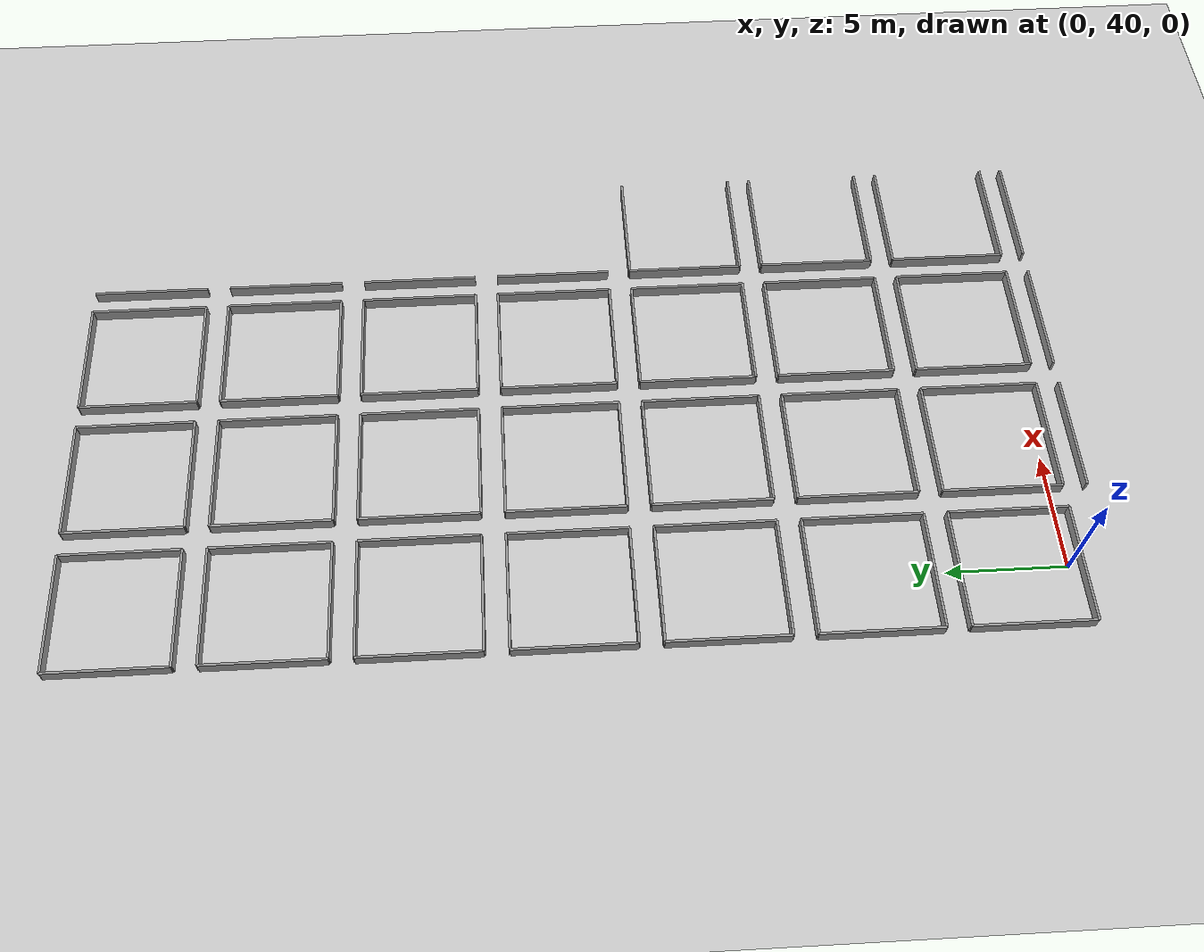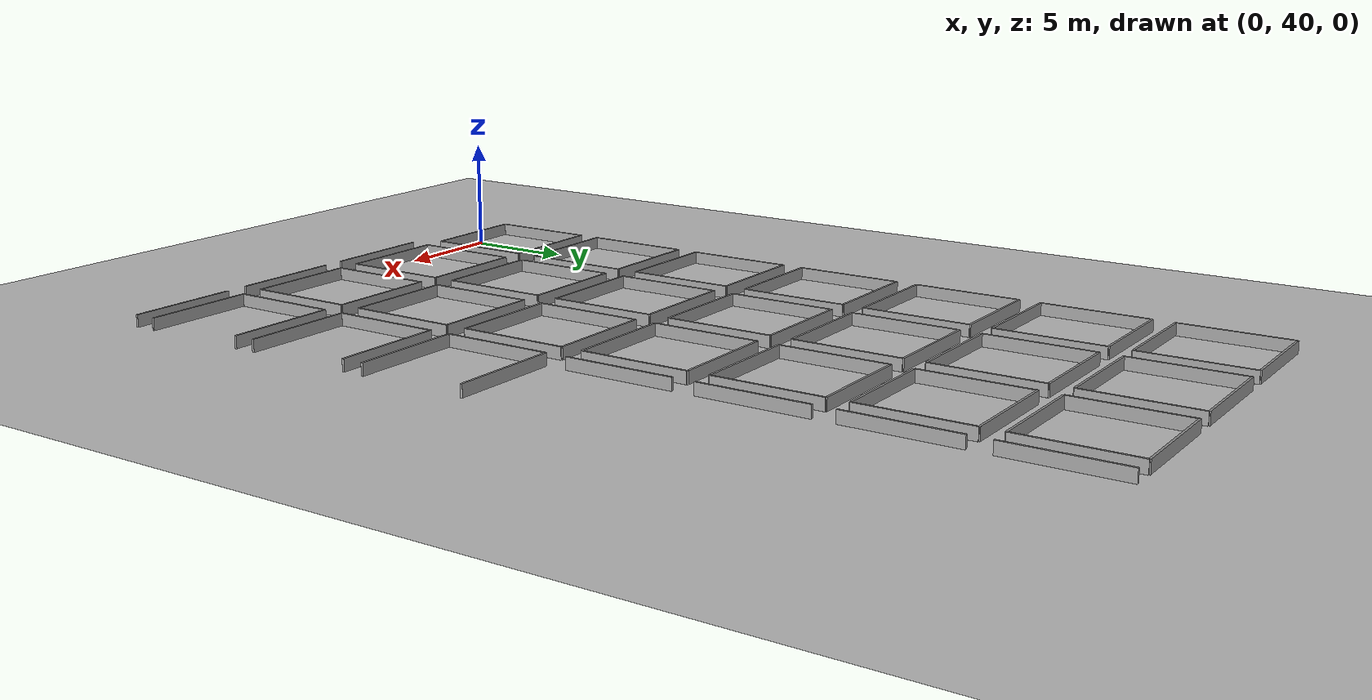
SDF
<sdf version="1.7">
 <world name="default">
  <include><uri>model://sun</uri></include>
  <model name="ground_plane">
   <static>true</static>
   <link name="link">
    <collision name="collision">
     <geometry><plane><normal>0 0 1</normal><size>100 100</size></plane></geometry>
    </collision>
    <visual name="visual">
     <geometry><plane><normal>0 0 1</normal><size>100 100</size></plane></geometry>
     <material>
      <script><uri>file://media/materials/scripts/gazebo.material</uri><name>Gazebo/Grey</name></script>
     </material>
    </visual>
   </link>
  </model>
  <model name="wall_91_north">
   <static>true</static>
   <pose>6 38.5 0 0 0 0</pose>
   <link name="link">
    <collision name="collision"><geometry><box><size>5 0.1 1</size></box></geometry></collision>
    <visual name="visual">
     <geometry><box><size>5 0.1 1</size></box></geometry>
     <material>
      <script><uri>file://media/materials/scripts/gazebo.material</uri><name>Gazebo/Grey</name></script>
     </material>
    </visual>
   </link>
  </model>
  <model name="wall_92_north">
   <static>true</static>
   <pose>12 38.5 0 0 0 0</pose>
   <link name="link">
    <collision name="collision"><geometry><box><size>5 0.1 1</size></box></geometry></collision>
    <visual name="visual">
     <geometry><box><size>5 0.1 1</size></box></geometry>
     <material>
      <script><uri>file://media/materials/scripts/gazebo.material</uri><name>Gazebo/Grey</name></script>
     </material>
    </visual>
   </link>
  </model>
  <model name="wall_93_north">
   <static>true</static>
   <pose>18 38.5 0 0 0 0</pose>
   <link name="link">
    <collision name="collision"><geometry><box><size>5 0.1 1</size></box></geometry></collision>
    <visual name="visual">
     <geometry><box><size>5 0.1 1</size></box></geometry>
     <material>
      <script><uri>file://media/materials/scripts/gazebo.material</uri><name>Gazebo/Grey</name></script>
     </material>
    </visual>
   </link>
  </model>
  <model name="wall_105_north">
   <static>true</static>
   <pose>0 44.5 0 0 0 0</pose>
   <link name="link">
    <collision name="collision"><geometry><box><size>5 0.1 1</size></box></geometry></collision>
    <visual name="visual">
     <geometry><box><size>5 0.1 1</size></box></geometry>
     <material>
      <script><uri>file://media/materials/scripts/gazebo.material</uri><name>Gazebo/Grey</name></script>
     </material>
    </visual>
   </link>
  </model>
  <model name="wall_105_south">
   <static>true</static>
   <pose>0 39.5 0 0 0 0</pose>
   <link name="link">
    <collision name="collision"><geometry><box><size>5 0.1 1</size></box></geometry></collision>
    <visual name="visual">
     <geometry><box><size>5 0.1 1</size></box></geometry>
     <material>
      <script><uri>file://media/materials/scripts/gazebo.material</uri><name>Gazebo/Grey</name></script>
     </material>
    </visual>
   </link>
  </model>
  <model name="wall_105_east">
   <static>true</static>
   <pose>2.5 42 0 0 0 1.5707</pose>
   <link name="link">
    <collision name="collision"><geometry><box><size>5 0.1 1</size></box></geometry></collision>
    <visual name="visual">
     <geometry><box><size>5 0.1 1</size></box></geometry>
     <material>
      <script><uri>file://media/materials/scripts/gazebo.material</uri><name>Gazebo/Grey</name></script>
     </material>
    </visual>
   </link>
  </model>
  <model name="wall_105_west">
   <static>true</static>
   <pose>-2.5 42 0 0 0 1.5707</pose>
   <link name="link">
    <collision name="collision"><geometry><box><size>5 0.1 1</size></box></geometry></collision>
    <visual name="visual">
     <geometry><box><size>5 0.1 1</size></box></geometry>
     <material>
      <script><uri>file://media/materials/scripts/gazebo.material</uri><name>Gazebo/Grey</name></script>
     </material>
    </visual>
   </link>
  </model>
  <model name="wall_106_north">
   <static>true</static>
   <pose>6 44.5 0 0 0 0</pose>
   <link name="link">
    <collision name="collision"><geometry><box><size>5 0.1 1</size></box></geometry></collision>
    <visual name="visual">
     <geometry><box><size>5 0.1 1</size></box></geometry>
     <material>
      <script><uri>file://media/materials/scripts/gazebo.material</uri><name>Gazebo/Grey</name></script>
     </material>
    </visual>
   </link>
  </model>
  <model name="wall_106_south">
   <static>true</static>
   <pose>6 39.5 0 0 0 0</pose>
   <link name="link">
    <collision name="collision"><geometry><box><size>5 0.1 1</size></box></geometry></collision>
    <visual name="visual">
     <geometry><box><size>5 0.1 1</size></box></geometry>
     <material>
      <script><uri>file://media/materials/scripts/gazebo.material</uri><name>Gazebo/Grey</name></script>
     </material>
    </visual>
   </link>
  </model>
  <model name="wall_106_east">
   <static>true</static>
   <pose>8.5 42 0 0 0 1.5707</pose>
   <link name="link">
    <collision name="collision"><geometry><box><size>5 0.1 1</size></box></geometry></collision>
    <visual name="visual">
     <geometry><box><size>5 0.1 1</size></box></geometry>
     <material>
      <script><uri>file://media/materials/scripts/gazebo.material</uri><name>Gazebo/Grey</name></script>
     </material>
    </visual>
   </link>
  </model>
  <model name="wall_106_west">
   <static>true</static>
   <pose>3.5 42 0 0 0 1.5707</pose>
   <link name="link">
    <collision name="collision"><geometry><box><size>5 0.1 1</size></box></geometry></collision>
    <visual name="visual">
     <geometry><box><size>5 0.1 1</size></box></geometry>
     <material>
      <script><uri>file://media/materials/scripts/gazebo.material</uri><name>Gazebo/Grey</name></script>
     </material>
    </visual>
   </link>
  </model>
  <model name="wall_107_north">
   <static>true</static>
   <pose>12 44.5 0 0 0 0</pose>
   <link name="link">
    <collision name="collision"><geometry><box><size>5 0.1 1</size></box></geometry></collision>
    <visual name="visual">
     <geometry><box><size>5 0.1 1</size></box></geometry>
     <material>
      <script><uri>file://media/materials/scripts/gazebo.material</uri><name>Gazebo/Grey</name></script>
     </material>
    </visual>
   </link>
  </model>
  <model name="wall_107_south">
   <static>true</static>
   <pose>12 39.5 0 0 0 0</pose>
   <link name="link">
    <collision name="collision"><geometry><box><size>5 0.1 1</size></box></geometry></collision>
    <visual name="visual">
     <geometry><box><size>5 0.1 1</size></box></geometry>
     <material>
      <script><uri>file://media/materials/scripts/gazebo.material</uri><name>Gazebo/Grey</name></script>
     </material>
    </visual>
   </link>
  </model>
  <model name="wall_107_east">
   <static>true</static>
   <pose>14.5 42 0 0 0 1.5707</pose>
   <link name="link">
    <collision name="collision"><geometry><box><size>5 0.1 1</size></box></geometry></collision>
    <visual name="visual">
     <geometry><box><size>5 0.1 1</size></box></geometry>
     <material>
      <script><uri>file://media/materials/scripts/gazebo.material</uri><name>Gazebo/Grey</name></script>
     </material>
    </visual>
   </link>
  </model>
  <model name="wall_107_west">
   <static>true</static>
   <pose>9.5 42 0 0 0 1.5707</pose>
   <link name="link">
    <collision name="collision"><geometry><box><size>5 0.1 1</size></box></geometry></collision>
    <visual name="visual">
     <geometry><box><size>5 0.1 1</size></box></geometry>
     <material>
      <script><uri>file://media/materials/scripts/gazebo.material</uri><name>Gazebo/Grey</name></script>
     </material>
    </visual>
   </link>
  </model>
  <model name="wall_108_north">
   <static>true</static>
   <pose>18 44.5 0 0 0 0</pose>
   <link name="link">
    <collision name="collision"><geometry><box><size>5 0.1 1</size></box></geometry></collision>
    <visual name="visual">
     <geometry><box><size>5 0.1 1</size></box></geometry>
     <material>
      <script><uri>file://media/materials/scripts/gazebo.material</uri><name>Gazebo/Grey</name></script>
     </material>
    </visual>
   </link>
  </model>
  <model name="wall_108_south">
   <static>true</static>
   <pose>18 39.5 0 0 0 0</pose>
   <link name="link">
    <collision name="collision"><geometry><box><size>5 0.1 1</size></box></geometry></collision>
    <visual name="visual">
     <geometry><box><size>5 0.1 1</size></box></geometry>
     <material>
      <script><uri>file://media/materials/scripts/gazebo.material</uri><name>Gazebo/Grey</name></script>
     </material>
    </visual>
   </link>
  </model>
  <model name="wall_108_west">
   <static>true</static>
   <pose>15.5 42 0 0 0 1.5707</pose>
   <link name="link">
    <collision name="collision"><geometry><box><size>5 0.1 1</size></box></geometry></collision>
    <visual name="visual">
     <geometry><box><size>5 0.1 1</size></box></geometry>
     <material>
      <script><uri>file://media/materials/scripts/gazebo.material</uri><name>Gazebo/Grey</name></script>
     </material>
    </visual>
   </link>
  </model>
  <model name="wall_120_north">
   <static>true</static>
   <pose>0 50.5 0 0 0 0</pose>
   <link name="link">
    <collision name="collision"><geometry><box><size>5 0.1 1</size></box></geometry></collision>
    <visual name="visual">
     <geometry><box><size>5 0.1 1</size></box></geometry>
     <material>
      <script><uri>file://media/materials/scripts/gazebo.material</uri><name>Gazebo/Grey</name></script>
     </material>
    </visual>
   </link>
  </model>
  <model name="wall_120_south">
   <static>true</static>
   <pose>0 45.5 0 0 0 0</pose>
   <link name="link">
    <collision name="collision"><geometry><box><size>5 0.1 1</size></box></geometry></collision>
    <visual name="visual">
     <geometry><box><size>5 0.1 1</size></box></geometry>
     <material>
      <script><uri>file://media/materials/scripts/gazebo.material</uri><name>Gazebo/Grey</name></script>
     </material>
    </visual>
   </link>
  </model>
  <model name="wall_120_east">
   <static>true</static>
   <pose>2.5 48 0 0 0 1.5707</pose>
   <link name="link">
    <collision name="collision"><geometry><box><size>5 0.1 1</size></box></geometry></collision>
    <visual name="visual">
     <geometry><box><size>5 0.1 1</size></box></geometry>
     <material>
      <script><uri>file://media/materials/scripts/gazebo.material</uri><name>Gazebo/Grey</name></script>
     </material>
    </visual>
   </link>
  </model>
  <model name="wall_120_west">
   <static>true</static>
   <pose>-2.5 48 0 0 0 1.5707</pose>
   <link name="link">
    <collision name="collision"><geometry><box><size>5 0.1 1</size></box></geometry></collision>
    <visual name="visual">
     <geometry><box><size>5 0.1 1</size></box></geometry>
     <material>
      <script><uri>file://media/materials/scripts/gazebo.material</uri><name>Gazebo/Grey</name></script>
     </material>
    </visual>
   </link>
  </model>
  <model name="wall_121_north">
   <static>true</static>
   <pose>6 50.5 0 0 0 0</pose>
   <link name="link">
    <collision name="collision"><geometry><box><size>5 0.1 1</size></box></geometry></collision>
    <visual name="visual">
     <geometry><box><size>5 0.1 1</size></box></geometry>
     <material>
      <script><uri>file://media/materials/scripts/gazebo.material</uri><name>Gazebo/Grey</name></script>
     </material>
    </visual>
   </link>
  </model>
  <model name="wall_121_south">
   <static>true</static>
   <pose>6 45.5 0 0 0 0</pose>
   <link name="link">
    <collision name="collision"><geometry><box><size>5 0.1 1</size></box></geometry></collision>
    <visual name="visual">
     <geometry><box><size>5 0.1 1</size></box></geometry>
     <material>
      <script><uri>file://media/materials/scripts/gazebo.material</uri><name>Gazebo/Grey</name></script>
     </material>
    </visual>
   </link>
  </model>
  <model name="wall_121_east">
   <static>true</static>
   <pose>8.5 48 0 0 0 1.5707</pose>
   <link name="link">
    <collision name="collision"><geometry><box><size>5 0.1 1</size></box></geometry></collision>
    <visual name="visual">
     <geometry><box><size>5 0.1 1</size></box></geometry>
     <material>
      <script><uri>file://media/materials/scripts/gazebo.material</uri><name>Gazebo/Grey</name></script>
     </material>
    </visual>
   </link>
  </model>
  <model name="wall_121_west">
   <static>true</static>
   <pose>3.5 48 0 0 0 1.5707</pose>
   <link name="link">
    <collision name="collision"><geometry><box><size>5 0.1 1</size></box></geometry></collision>
    <visual name="visual">
     <geometry><box><size>5 0.1 1</size></box></geometry>
     <material>
      <script><uri>file://media/materials/scripts/gazebo.material</uri><name>Gazebo/Grey</name></script>
     </material>
    </visual>
   </link>
  </model>
  <model name="wall_122_north">
   <static>true</static>
   <pose>12 50.5 0 0 0 0</pose>
   <link name="link">
    <collision name="collision"><geometry><box><size>5 0.1 1</size></box></geometry></collision>
    <visual name="visual">
     <geometry><box><size>5 0.1 1</size></box></geometry>
     <material>
      <script><uri>file://media/materials/scripts/gazebo.material</uri><name>Gazebo/Grey</name></script>
     </material>
    </visual>
   </link>
  </model>
  <model name="wall_122_south">
   <static>true</static>
   <pose>12 45.5 0 0 0 0</pose>
   <link name="link">
    <collision name="collision"><geometry><box><size>5 0.1 1</size></box></geometry></collision>
    <visual name="visual">
     <geometry><box><size>5 0.1 1</size></box></geometry>
     <material>
      <script><uri>file://media/materials/scripts/gazebo.material</uri><name>Gazebo/Grey</name></script>
     </material>
    </visual>
   </link>
  </model>
  <model name="wall_122_east">
   <static>true</static>
   <pose>14.5 48 0 0 0 1.5707</pose>
   <link name="link">
    <collision name="collision"><geometry><box><size>5 0.1 1</size></box></geometry></collision>
    <visual name="visual">
     <geometry><box><size>5 0.1 1</size></box></geometry>
     <material>
      <script><uri>file://media/materials/scripts/gazebo.material</uri><name>Gazebo/Grey</name></script>
     </material>
    </visual>
   </link>
  </model>
  <model name="wall_122_west">
   <static>true</static>
   <pose>9.5 48 0 0 0 1.5707</pose>
   <link name="link">
    <collision name="collision"><geometry><box><size>5 0.1 1</size></box></geometry></collision>
    <visual name="visual">
     <geometry><box><size>5 0.1 1</size></box></geometry>
     <material>
      <script><uri>file://media/materials/scripts/gazebo.material</uri><name>Gazebo/Grey</name></script>
     </material>
    </visual>
   </link>
  </model>
  <model name="wall_123_north">
   <static>true</static>
   <pose>18 50.5 0 0 0 0</pose>
   <link name="link">
    <collision name="collision"><geometry><box><size>5 0.1 1</size></box></geometry></collision>
    <visual name="visual">
     <geometry><box><size>5 0.1 1</size></box></geometry>
     <material>
      <script><uri>file://media/materials/scripts/gazebo.material</uri><name>Gazebo/Grey</name></script>
     </material>
    </visual>
   </link>
  </model>
  <model name="wall_123_south">
   <static>true</static>
   <pose>18 45.5 0 0 0 0</pose>
   <link name="link">
    <collision name="collision"><geometry><box><size>5 0.1 1</size></box></geometry></collision>
    <visual name="visual">
     <geometry><box><size>5 0.1 1</size></box></geometry>
     <material>
      <script><uri>file://media/materials/scripts/gazebo.material</uri><name>Gazebo/Grey</name></script>
     </material>
    </visual>
   </link>
  </model>
  <model name="wall_123_west">
   <static>true</static>
   <pose>15.5 48 0 0 0 1.5707</pose>
   <link name="link">
    <collision name="collision"><geometry><box><size>5 0.1 1</size></box></geometry></collision>
    <visual name="visual">
     <geometry><box><size>5 0.1 1</size></box></geometry>
     <material>
      <script><uri>file://media/materials/scripts/gazebo.material</uri><name>Gazebo/Grey</name></script>
     </material>
    </visual>
   </link>
  </model>
  <model name="wall_135_north">
   <static>true</static>
   <pose>0 56.5 0 0 0 0</pose>
   <link name="link">
    <collision name="collision"><geometry><box><size>5 0.1 1</size></box></geometry></collision>
    <visual name="visual">
     <geometry><box><size>5 0.1 1</size></box></geometry>
     <material>
      <script><uri>file://media/materials/scripts/gazebo.material</uri><name>Gazebo/Grey</name></script>
     </material>
    </visual>
   </link>
  </model>
  <model name="wall_135_south">
   <static>true</static>
   <pose>0 51.5 0 0 0 0</pose>
   <link name="link">
    <collision name="collision"><geometry><box><size>5 0.1 1</size></box></geometry></collision>
    <visual name="visual">
     <geometry><box><size>5 0.1 1</size></box></geometry>
     <material>
      <script><uri>file://media/materials/scripts/gazebo.material</uri><name>Gazebo/Grey</name></script>
     </material>
    </visual>
   </link>
  </model>
  <model name="wall_135_east">
   <static>true</static>
   <pose>2.5 54 0 0 0 1.5707</pose>
   <link name="link">
    <collision name="collision"><geometry><box><size>5 0.1 1</size></box></geometry></collision>
    <visual name="visual">
     <geometry><box><size>5 0.1 1</size></box></geometry>
     <material>
      <script><uri>file://media/materials/scripts/gazebo.material</uri><name>Gazebo/Grey</name></script>
     </material>
    </visual>
   </link>
  </model>
  <model name="wall_135_west">
   <static>true</static>
   <pose>-2.5 54 0 0 0 1.5707</pose>
   <link name="link">
    <collision name="collision"><geometry><box><size>5 0.1 1</size></box></geometry></collision>
    <visual name="visual">
     <geometry><box><size>5 0.1 1</size></box></geometry>
     <material>
      <script><uri>file://media/materials/scripts/gazebo.material</uri><name>Gazebo/Grey</name></script>
     </material>
    </visual>
   </link>
  </model>
  <model name="wall_136_north">
   <static>true</static>
   <pose>6 56.5 0 0 0 0</pose>
   <link name="link">
    <collision name="collision"><geometry><box><size>5 0.1 1</size></box></geometry></collision>
    <visual name="visual">
     <geometry><box><size>5 0.1 1</size></box></geometry>
     <material>
      <script><uri>file://media/materials/scripts/gazebo.material</uri><name>Gazebo/Grey</name></script>
     </material>
    </visual>
   </link>
  </model>
  <model name="wall_136_south">
   <static>true</static>
   <pose>6 51.5 0 0 0 0</pose>
   <link name="link">
    <collision name="collision"><geometry><box><size>5 0.1 1</size></box></geometry></collision>
    <visual name="visual">
     <geometry><box><size>5 0.1 1</size></box></geometry>
     <material>
      <script><uri>file://media/materials/scripts/gazebo.material</uri><name>Gazebo/Grey</name></script>
     </material>
    </visual>
   </link>
  </model>
  <model name="wall_136_east">
   <static>true</static>
   <pose>8.5 54 0 0 0 1.5707</pose>
   <link name="link">
    <collision name="collision"><geometry><box><size>5 0.1 1</size></box></geometry></collision>
    <visual name="visual">
     <geometry><box><size>5 0.1 1</size></box></geometry>
     <material>
      <script><uri>file://media/materials/scripts/gazebo.material</uri><name>Gazebo/Grey</name></script>
     </material>
    </visual>
   </link>
  </model>
  <model name="wall_136_west">
   <static>true</static>
   <pose>3.5 54 0 0 0 1.5707</pose>
   <link name="link">
    <collision name="collision"><geometry><box><size>5 0.1 1</size></box></geometry></collision>
    <visual name="visual">
     <geometry><box><size>5 0.1 1</size></box></geometry>
     <material>
      <script><uri>file://media/materials/scripts/gazebo.material</uri><name>Gazebo/Grey</name></script>
     </material>
    </visual>
   </link>
  </model>
  <model name="wall_137_north">
   <static>true</static>
   <pose>12 56.5 0 0 0 0</pose>
   <link name="link">
    <collision name="collision"><geometry><box><size>5 0.1 1</size></box></geometry></collision>
    <visual name="visual">
     <geometry><box><size>5 0.1 1</size></box></geometry>
     <material>
      <script><uri>file://media/materials/scripts/gazebo.material</uri><name>Gazebo/Grey</name></script>
     </material>
    </visual>
   </link>
  </model>
  <model name="wall_137_south">
   <static>true</static>
   <pose>12 51.5 0 0 0 0</pose>
   <link name="link">
    <collision name="collision"><geometry><box><size>5 0.1 1</size></box></geometry></collision>
    <visual name="visual">
     <geometry><box><size>5 0.1 1</size></box></geometry>
     <material>
      <script><uri>file://media/materials/scripts/gazebo.material</uri><name>Gazebo/Grey</name></script>
     </material>
    </visual>
   </link>
  </model>
  <model name="wall_137_east">
   <static>true</static>
   <pose>14.5 54 0 0 0 1.5707</pose>
   <link name="link">
    <collision name="collision"><geometry><box><size>5 0.1 1</size></box></geometry></collision>
    <visual name="visual">
     <geometry><box><size>5 0.1 1</size></box></geometry>
     <material>
      <script><uri>file://media/materials/scripts/gazebo.material</uri><name>Gazebo/Grey</name></script>
     </material>
    </visual>
   </link>
  </model>
  <model name="wall_137_west">
   <static>true</static>
   <pose>9.5 54 0 0 0 1.5707</pose>
   <link name="link">
    <collision name="collision"><geometry><box><size>5 0.1 1</size></box></geometry></collision>
    <visual name="visual">
     <geometry><box><size>5 0.1 1</size></box></geometry>
     <material>
      <script><uri>file://media/materials/scripts/gazebo.material</uri><name>Gazebo/Grey</name></script>
     </material>
    </visual>
   </link>
  </model>
  <model name="wall_138_north">
   <static>true</static>
   <pose>18 56.5 0 0 0 0</pose>
   <link name="link">
    <collision name="collision"><geometry><box><size>5 0.1 1</size></box></geometry></collision>
    <visual name="visual">
     <geometry><box><size>5 0.1 1</size></box></geometry>
     <material>
      <script><uri>file://media/materials/scripts/gazebo.material</uri><name>Gazebo/Grey</name></script>
     </material>
    </visual>
   </link>
  </model>
  <model name="wall_138_south">
   <static>true</static>
   <pose>18 51.5 0 0 0 0</pose>
   <link name="link">
    <collision name="collision"><geometry><box><size>5 0.1 1</size></box></geometry></collision>
    <visual name="visual">
     <geometry><box><size>5 0.1 1</size></box></geometry>
     <material>
      <script><uri>file://media/materials/scripts/gazebo.material</uri><name>Gazebo/Grey</name></script>
     </material>
    </visual>
   </link>
  </model>
  <model name="wall_138_west">
   <static>true</static>
   <pose>15.5 54 0 0 0 1.5707</pose>
   <link name="link">
    <collision name="collision"><geometry><box><size>5 0.1 1</size></box></geometry></collision>
    <visual name="visual">
     <geometry><box><size>5 0.1 1</size></box></geometry>
     <material>
      <script><uri>file://media/materials/scripts/gazebo.material</uri><name>Gazebo/Grey</name></script>
     </material>
    </visual>
   </link>
  </model>
  <model name="wall_150_north">
   <static>true</static>
   <pose>0 62.5 0 0 0 0</pose>
   <link name="link">
    <collision name="collision"><geometry><box><size>5 0.1 1</size></box></geometry></collision>
    <visual name="visual">
     <geometry><box><size>5 0.1 1</size></box></geometry>
     <material>
      <script><uri>file://media/materials/scripts/gazebo.material</uri><name>Gazebo/Grey</name></script>
     </material>
    </visual>
   </link>
  </model>
  <model name="wall_150_south">
   <static>true</static>
   <pose>0 57.5 0 0 0 0</pose>
   <link name="link">
    <collision name="collision"><geometry><box><size>5 0.1 1</size></box></geometry></collision>
    <visual name="visual">
     <geometry><box><size>5 0.1 1</size></box></geometry>
     <material>
      <script><uri>file://media/materials/scripts/gazebo.material</uri><name>Gazebo/Grey</name></script>
     </material>
    </visual>
   </link>
  </model>
  <model name="wall_150_east">
   <static>true</static>
   <pose>2.5 60 0 0 0 1.5707</pose>
   <link name="link">
    <collision name="collision"><geometry><box><size>5 0.1 1</size></box></geometry></collision>
    <visual name="visual">
     <geometry><box><size>5 0.1 1</size></box></geometry>
     <material>
      <script><uri>file://media/materials/scripts/gazebo.material</uri><name>Gazebo/Grey</name></script>
     </material>
    </visual>
   </link>
  </model>
  <model name="wall_150_west">
   <static>true</static>
   <pose>-2.5 60 0 0 0 1.5707</pose>
   <link name="link">
    <collision name="collision"><geometry><box><size>5 0.1 1</size></box></geometry></collision>
    <visual name="visual">
     <geometry><box><size>5 0.1 1</size></box></geometry>
     <material>
      <script><uri>file://media/materials/scripts/gazebo.material</uri><name>Gazebo/Grey</name></script>
     </material>
    </visual>
   </link>
  </model>
  <model name="wall_151_north">
   <static>true</static>
   <pose>6 62.5 0 0 0 0</pose>
   <link name="link">
    <collision name="collision"><geometry><box><size>5 0.1 1</size></box></geometry></collision>
    <visual name="visual">
     <geometry><box><size>5 0.1 1</size></box></geometry>
     <material>
      <script><uri>file://media/materials/scripts/gazebo.material</uri><name>Gazebo/Grey</name></script>
     </material>
    </visual>
   </link>
  </model>
  <model name="wall_151_south">
   <static>true</static>
   <pose>6 57.5 0 0 0 0</pose>
   <link name="link">
    <collision name="collision"><geometry><box><size>5 0.1 1</size></box></geometry></collision>
    <visual name="visual">
     <geometry><box><size>5 0.1 1</size></box></geometry>
     <material>
      <script><uri>file://media/materials/scripts/gazebo.material</uri><name>Gazebo/Grey</name></script>
     </material>
    </visual>
   </link>
  </model>
  <model name="wall_151_east">
   <static>true</static>
   <pose>8.5 60 0 0 0 1.5707</pose>
   <link name="link">
    <collision name="collision"><geometry><box><size>5 0.1 1</size></box></geometry></collision>
    <visual name="visual">
     <geometry><box><size>5 0.1 1</size></box></geometry>
     <material>
      <script><uri>file://media/materials/scripts/gazebo.material</uri><name>Gazebo/Grey</name></script>
     </material>
    </visual>
   </link>
  </model>
  <model name="wall_151_west">
   <static>true</static>
   <pose>3.5 60 0 0 0 1.5707</pose>
   <link name="link">
    <collision name="collision"><geometry><box><size>5 0.1 1</size></box></geometry></collision>
    <visual name="visual">
     <geometry><box><size>5 0.1 1</size></box></geometry>
     <material>
      <script><uri>file://media/materials/scripts/gazebo.material</uri><name>Gazebo/Grey</name></script>
     </material>
    </visual>
   </link>
  </model>
  <model name="wall_152_north">
   <static>true</static>
   <pose>12 62.5 0 0 0 0</pose>
   <link name="link">
    <collision name="collision"><geometry><box><size>5 0.1 1</size></box></geometry></collision>
    <visual name="visual">
     <geometry><box><size>5 0.1 1</size></box></geometry>
     <material>
      <script><uri>file://media/materials/scripts/gazebo.material</uri><name>Gazebo/Grey</name></script>
     </material>
    </visual>
   </link>
  </model>
  <model name="wall_152_south">
   <static>true</static>
   <pose>12 57.5 0 0 0 0</pose>
   <link name="link">
    <collision name="collision"><geometry><box><size>5 0.1 1</size></box></geometry></collision>
    <visual name="visual">
     <geometry><box><size>5 0.1 1</size></box></geometry>
     <material>
      <script><uri>file://media/materials/scripts/gazebo.material</uri><name>Gazebo/Grey</name></script>
     </material>
    </visual>
   </link>
  </model>
  <model name="wall_152_east">
   <static>true</static>
   <pose>14.5 60 0 0 0 1.5707</pose>
   <link name="link">
    <collision name="collision"><geometry><box><size>5 0.1 1</size></box></geometry></collision>
    <visual name="visual">
     <geometry><box><size>5 0.1 1</size></box></geometry>
     <material>
      <script><uri>file://media/materials/scripts/gazebo.material</uri><name>Gazebo/Grey</name></script>
     </material>
    </visual>
   </link>
  </model>
  <model name="wall_152_west">
   <static>true</static>
   <pose>9.5 60 0 0 0 1.5707</pose>
   <link name="link">
    <collision name="collision"><geometry><box><size>5 0.1 1</size></box></geometry></collision>
    <visual name="visual">
     <geometry><box><size>5 0.1 1</size></box></geometry>
     <material>
      <script><uri>file://media/materials/scripts/gazebo.material</uri><name>Gazebo/Grey</name></script>
     </material>
    </visual>
   </link>
  </model>
  <model name="wall_153_west">
   <static>true</static>
   <pose>15.5 60 0 0 0 1.5707</pose>
   <link name="link">
    <collision name="collision"><geometry><box><size>5 0.1 1</size></box></geometry></collision>
    <visual name="visual">
     <geometry><box><size>5 0.1 1</size></box></geometry>
     <material>
      <script><uri>file://media/materials/scripts/gazebo.material</uri><name>Gazebo/Grey</name></script>
     </material>
    </visual>
   </link>
  </model>
  <model name="wall_165_north">
   <static>true</static>
   <pose>0 68.5 0 0 0 0</pose>
   <link name="link">
    <collision name="collision"><geometry><box><size>5 0.1 1</size></box></geometry></collision>
    <visual name="visual">
     <geometry><box><size>5 0.1 1</size></box></geometry>
     <material>
      <script><uri>file://media/materials/scripts/gazebo.material</uri><name>Gazebo/Grey</name></script>
     </material>
    </visual>
   </link>
  </model>
  <model name="wall_165_south">
   <static>true</static>
   <pose>0 63.5 0 0 0 0</pose>
   <link name="link">
    <collision name="collision"><geometry><box><size>5 0.1 1</size></box></geometry></collision>
    <visual name="visual">
     <geometry><box><size>5 0.1 1</size></box></geometry>
     <material>
      <script><uri>file://media/materials/scripts/gazebo.material</uri><name>Gazebo/Grey</name></script>
     </material>
    </visual>
   </link>
  </model>
  <model name="wall_165_east">
   <static>true</static>
   <pose>2.5 66 0 0 0 1.5707</pose>
   <link name="link">
    <collision name="collision"><geometry><box><size>5 0.1 1</size></box></geometry></collision>
    <visual name="visual">
     <geometry><box><size>5 0.1 1</size></box></geometry>
     <material>
      <script><uri>file://media/materials/scripts/gazebo.material</uri><name>Gazebo/Grey</name></script>
     </material>
    </visual>
   </link>
  </model>
  <model name="wall_165_west">
   <static>true</static>
   <pose>-2.5 66 0 0 0 1.5707</pose>
   <link name="link">
    <collision name="collision"><geometry><box><size>5 0.1 1</size></box></geometry></collision>
    <visual name="visual">
     <geometry><box><size>5 0.1 1</size></box></geometry>
     <material>
      <script><uri>file://media/materials/scripts/gazebo.material</uri><name>Gazebo/Grey</name></script>
     </material>
    </visual>
   </link>
  </model>
  <model name="wall_166_north">
   <static>true</static>
   <pose>6 68.5 0 0 0 0</pose>
   <link name="link">
    <collision name="collision"><geometry><box><size>5 0.1 1</size></box></geometry></collision>
    <visual name="visual">
     <geometry><box><size>5 0.1 1</size></box></geometry>
     <material>
      <script><uri>file://media/materials/scripts/gazebo.material</uri><name>Gazebo/Grey</name></script>
     </material>
    </visual>
   </link>
  </model>
  <model name="wall_166_south">
   <static>true</static>
   <pose>6 63.5 0 0 0 0</pose>
   <link name="link">
    <collision name="collision"><geometry><box><size>5 0.1 1</size></box></geometry></collision>
    <visual name="visual">
     <geometry><box><size>5 0.1 1</size></box></geometry>
     <material>
      <script><uri>file://media/materials/scripts/gazebo.material</uri><name>Gazebo/Grey</name></script>
     </material>
    </visual>
   </link>
  </model>
  <model name="wall_166_east">
   <static>true</static>
   <pose>8.5 66 0 0 0 1.5707</pose>
   <link name="link">
    <collision name="collision"><geometry><box><size>5 0.1 1</size></box></geometry></collision>
    <visual name="visual">
     <geometry><box><size>5 0.1 1</size></box></geometry>
     <material>
      <script><uri>file://media/materials/scripts/gazebo.material</uri><name>Gazebo/Grey</name></script>
     </material>
    </visual>
   </link>
  </model>
  <model name="wall_166_west">
   <static>true</static>
   <pose>3.5 66 0 0 0 1.5707</pose>
   <link name="link">
    <collision name="collision"><geometry><box><size>5 0.1 1</size></box></geometry></collision>
    <visual name="visual">
     <geometry><box><size>5 0.1 1</size></box></geometry>
     <material>
      <script><uri>file://media/materials/scripts/gazebo.material</uri><name>Gazebo/Grey</name></script>
     </material>
    </visual>
   </link>
  </model>
  <model name="wall_167_north">
   <static>true</static>
   <pose>12 68.5 0 0 0 0</pose>
   <link name="link">
    <collision name="collision"><geometry><box><size>5 0.1 1</size></box></geometry></collision>
    <visual name="visual">
     <geometry><box><size>5 0.1 1</size></box></geometry>
     <material>
      <script><uri>file://media/materials/scripts/gazebo.material</uri><name>Gazebo/Grey</name></script>
     </material>
    </visual>
   </link>
  </model>
  <model name="wall_167_south">
   <static>true</static>
   <pose>12 63.5 0 0 0 0</pose>
   <link name="link">
    <collision name="collision"><geometry><box><size>5 0.1 1</size></box></geometry></collision>
    <visual name="visual">
     <geometry><box><size>5 0.1 1</size></box></geometry>
     <material>
      <script><uri>file://media/materials/scripts/gazebo.material</uri><name>Gazebo/Grey</name></script>
     </material>
    </visual>
   </link>
  </model>
  <model name="wall_167_east">
   <static>true</static>
   <pose>14.5 66 0 0 0 1.5707</pose>
   <link name="link">
    <collision name="collision"><geometry><box><size>5 0.1 1</size></box></geometry></collision>
    <visual name="visual">
     <geometry><box><size>5 0.1 1</size></box></geometry>
     <material>
      <script><uri>file://media/materials/scripts/gazebo.material</uri><name>Gazebo/Grey</name></script>
     </material>
    </visual>
   </link>
  </model>
  <model name="wall_167_west">
   <static>true</static>
   <pose>9.5 66 0 0 0 1.5707</pose>
   <link name="link">
    <collision name="collision"><geometry><box><size>5 0.1 1</size></box></geometry></collision>
    <visual name="visual">
     <geometry><box><size>5 0.1 1</size></box></geometry>
     <material>
      <script><uri>file://media/materials/scripts/gazebo.material</uri><name>Gazebo/Grey</name></script>
     </material>
    </visual>
   </link>
  </model>
  <model name="wall_168_west">
   <static>true</static>
   <pose>15.5 66 0 0 0 1.5707</pose>
   <link name="link">
    <collision name="collision"><geometry><box><size>5 0.1 1</size></box></geometry></collision>
    <visual name="visual">
     <geometry><box><size>5 0.1 1</size></box></geometry>
     <material>
      <script><uri>file://media/materials/scripts/gazebo.material</uri><name>Gazebo/Grey</name></script>
     </material>
    </visual>
   </link>
  </model>
  <model name="wall_180_north">
   <static>true</static>
   <pose>0 74.5 0 0 0 0</pose>
   <link name="link">
    <collision name="collision"><geometry><box><size>5 0.1 1</size></box></geometry></collision>
    <visual name="visual">
     <geometry><box><size>5 0.1 1</size></box></geometry>
     <material>
      <script><uri>file://media/materials/scripts/gazebo.material</uri><name>Gazebo/Grey</name></script>
     </material>
    </visual>
   </link>
  </model>
  <model name="wall_180_south">
   <static>true</static>
   <pose>0 69.5 0 0 0 0</pose>
   <link name="link">
    <collision name="collision"><geometry><box><size>5 0.1 1</size></box></geometry></collision>
    <visual name="visual">
     <geometry><box><size>5 0.1 1</size></box></geometry>
     <material>
      <script><uri>file://media/materials/scripts/gazebo.material</uri><name>Gazebo/Grey</name></script>
     </material>
    </visual>
   </link>
  </model>
  <model name="wall_180_east">
   <static>true</static>
   <pose>2.5 72 0 0 0 1.5707</pose>
   <link name="link">
    <collision name="collision"><geometry><box><size>5 0.1 1</size></box></geometry></collision>
    <visual name="visual">
     <geometry><box><size>5 0.1 1</size></box></geometry>
     <material>
      <script><uri>file://media/materials/scripts/gazebo.material</uri><name>Gazebo/Grey</name></script>
     </material>
    </visual>
   </link>
  </model>
  <model name="wall_180_west">
   <static>true</static>
   <pose>-2.5 72 0 0 0 1.5707</pose>
   <link name="link">
    <collision name="collision"><geometry><box><size>5 0.1 1</size></box></geometry></collision>
    <visual name="visual">
     <geometry><box><size>5 0.1 1</size></box></geometry>
     <material>
      <script><uri>file://media/materials/scripts/gazebo.material</uri><name>Gazebo/Grey</name></script>
     </material>
    </visual>
   </link>
  </model>
  <model name="wall_181_north">
   <static>true</static>
   <pose>6 74.5 0 0 0 0</pose>
   <link name="link">
    <collision name="collision"><geometry><box><size>5 0.1 1</size></box></geometry></collision>
    <visual name="visual">
     <geometry><box><size>5 0.1 1</size></box></geometry>
     <material>
      <script><uri>file://media/materials/scripts/gazebo.material</uri><name>Gazebo/Grey</name></script>
     </material>
    </visual>
   </link>
  </model>
  <model name="wall_181_south">
   <static>true</static>
   <pose>6 69.5 0 0 0 0</pose>
   <link name="link">
    <collision name="collision"><geometry><box><size>5 0.1 1</size></box></geometry></collision>
    <visual name="visual">
     <geometry><box><size>5 0.1 1</size></box></geometry>
     <material>
      <script><uri>file://media/materials/scripts/gazebo.material</uri><name>Gazebo/Grey</name></script>
     </material>
    </visual>
   </link>
  </model>
  <model name="wall_181_east">
   <static>true</static>
   <pose>8.5 72 0 0 0 1.5707</pose>
   <link name="link">
    <collision name="collision"><geometry><box><size>5 0.1 1</size></box></geometry></collision>
    <visual name="visual">
     <geometry><box><size>5 0.1 1</size></box></geometry>
     <material>
      <script><uri>file://media/materials/scripts/gazebo.material</uri><name>Gazebo/Grey</name></script>
     </material>
    </visual>
   </link>
  </model>
  <model name="wall_181_west">
   <static>true</static>
   <pose>3.5 72 0 0 0 1.5707</pose>
   <link name="link">
    <collision name="collision"><geometry><box><size>5 0.1 1</size></box></geometry></collision>
    <visual name="visual">
     <geometry><box><size>5 0.1 1</size></box></geometry>
     <material>
      <script><uri>file://media/materials/scripts/gazebo.material</uri><name>Gazebo/Grey</name></script>
     </material>
    </visual>
   </link>
  </model>
  <model name="wall_182_north">
   <static>true</static>
   <pose>12 74.5 0 0 0 0</pose>
   <link name="link">
    <collision name="collision"><geometry><box><size>5 0.1 1</size></box></geometry></collision>
    <visual name="visual">
     <geometry><box><size>5 0.1 1</size></box></geometry>
     <material>
      <script><uri>file://media/materials/scripts/gazebo.material</uri><name>Gazebo/Grey</name></script>
     </material>
    </visual>
   </link>
  </model>
  <model name="wall_182_south">
   <static>true</static>
   <pose>12 69.5 0 0 0 0</pose>
   <link name="link">
    <collision name="collision"><geometry><box><size>5 0.1 1</size></box></geometry></collision>
    <visual name="visual">
     <geometry><box><size>5 0.1 1</size></box></geometry>
     <material>
      <script><uri>file://media/materials/scripts/gazebo.material</uri><name>Gazebo/Grey</name></script>
     </material>
    </visual>
   </link>
  </model>
  <model name="wall_182_east">
   <static>true</static>
   <pose>14.5 72 0 0 0 1.5707</pose>
   <link name="link">
    <collision name="collision"><geometry><box><size>5 0.1 1</size></box></geometry></collision>
    <visual name="visual">
     <geometry><box><size>5 0.1 1</size></box></geometry>
     <material>
      <script><uri>file://media/materials/scripts/gazebo.material</uri><name>Gazebo/Grey</name></script>
     </material>
    </visual>
   </link>
  </model>
  <model name="wall_182_west">
   <static>true</static>
   <pose>9.5 72 0 0 0 1.5707</pose>
   <link name="link">
    <collision name="collision"><geometry><box><size>5 0.1 1</size></box></geometry></collision>
    <visual name="visual">
     <geometry><box><size>5 0.1 1</size></box></geometry>
     <material>
      <script><uri>file://media/materials/scripts/gazebo.material</uri><name>Gazebo/Grey</name></script>
     </material>
    </visual>
   </link>
  </model>
  <model name="wall_183_west">
   <static>true</static>
   <pose>15.5 72 0 0 0 1.5707</pose>
   <link name="link">
    <collision name="collision"><geometry><box><size>5 0.1 1</size></box></geometry></collision>
    <visual name="visual">
     <geometry><box><size>5 0.1 1</size></box></geometry>
     <material>
      <script><uri>file://media/materials/scripts/gazebo.material</uri><name>Gazebo/Grey</name></script>
     </material>
    </visual>
   </link>
  </model>
  <model name="wall_195_north">
   <static>true</static>
   <pose>0 80.5 0 0 0 0</pose>
   <link name="link">
    <collision name="collision"><geometry><box><size>5 0.1 1</size></box></geometry></collision>
    <visual name="visual">
     <geometry><box><size>5 0.1 1</size></box></geometry>
     <material>
      <script><uri>file://media/materials/scripts/gazebo.material</uri><name>Gazebo/Grey</name></script>
     </material>
    </visual>
   </link>
  </model>
  <model name="wall_195_south">
   <static>true</static>
   <pose>0 75.5 0 0 0 0</pose>
   <link name="link">
    <collision name="collision"><geometry><box><size>5 0.1 1</size></box></geometry></collision>
    <visual name="visual">
     <geometry><box><size>5 0.1 1</size></box></geometry>
     <material>
      <script><uri>file://media/materials/scripts/gazebo.material</uri><name>Gazebo/Grey</name></script>
     </material>
    </visual>
   </link>
  </model>
  <model name="wall_195_east">
   <static>true</static>
   <pose>2.5 78 0 0 0 1.5707</pose>
   <link name="link">
    <collision name="collision"><geometry><box><size>5 0.1 1</size></box></geometry></collision>
    <visual name="visual">
     <geometry><box><size>5 0.1 1</size></box></geometry>
     <material>
      <script><uri>file://media/materials/scripts/gazebo.material</uri><name>Gazebo/Grey</name></script>
     </material>
    </visual>
   </link>
  </model>
  <model name="wall_195_west">
   <static>true</static>
   <pose>-2.5 78 0 0 0 1.5707</pose>
   <link name="link">
    <collision name="collision"><geometry><box><size>5 0.1 1</size></box></geometry></collision>
    <visual name="visual">
     <geometry><box><size>5 0.1 1</size></box></geometry>
     <material>
      <script><uri>file://media/materials/scripts/gazebo.material</uri><name>Gazebo/Grey</name></script>
     </material>
    </visual>
   </link>
  </model>
  <model name="wall_196_north">
   <static>true</static>
   <pose>6 80.5 0 0 0 0</pose>
   <link name="link">
    <collision name="collision"><geometry><box><size>5 0.1 1</size></box></geometry></collision>
    <visual name="visual">
     <geometry><box><size>5 0.1 1</size></box></geometry>
     <material>
      <script><uri>file://media/materials/scripts/gazebo.material</uri><name>Gazebo/Grey</name></script>
     </material>
    </visual>
   </link>
  </model>
  <model name="wall_196_south">
   <static>true</static>
   <pose>6 75.5 0 0 0 0</pose>
   <link name="link">
    <collision name="collision"><geometry><box><size>5 0.1 1</size></box></geometry></collision>
    <visual name="visual">
     <geometry><box><size>5 0.1 1</size></box></geometry>
     <material>
      <script><uri>file://media/materials/scripts/gazebo.material</uri><name>Gazebo/Grey</name></script>
     </material>
    </visual>
   </link>
  </model>
  <model name="wall_196_east">
   <static>true</static>
   <pose>8.5 78 0 0 0 1.5707</pose>
   <link name="link">
    <collision name="collision"><geometry><box><size>5 0.1 1</size></box></geometry></collision>
    <visual name="visual">
     <geometry><box><size>5 0.1 1</size></box></geometry>
     <material>
      <script><uri>file://media/materials/scripts/gazebo.material</uri><name>Gazebo/Grey</name></script>
     </material>
    </visual>
   </link>
  </model>
  <model name="wall_196_west">
   <static>true</static>
   <pose>3.5 78 0 0 0 1.5707</pose>
   <link name="link">
    <collision name="collision"><geometry><box><size>5 0.1 1</size></box></geometry></collision>
    <visual name="visual">
     <geometry><box><size>5 0.1 1</size></box></geometry>
     <material>
      <script><uri>file://media/materials/scripts/gazebo.material</uri><name>Gazebo/Grey</name></script>
     </material>
    </visual>
   </link>
  </model>
  <model name="wall_197_north">
   <static>true</static>
   <pose>12 80.5 0 0 0 0</pose>
   <link name="link">
    <collision name="collision"><geometry><box><size>5 0.1 1</size></box></geometry></collision>
    <visual name="visual">
     <geometry><box><size>5 0.1 1</size></box></geometry>
     <material>
      <script><uri>file://media/materials/scripts/gazebo.material</uri><name>Gazebo/Grey</name></script>
     </material>
    </visual>
   </link>
  </model>
  <model name="wall_197_south">
   <static>true</static>
   <pose>12 75.5 0 0 0 0</pose>
   <link name="link">
    <collision name="collision"><geometry><box><size>5 0.1 1</size></box></geometry></collision>
    <visual name="visual">
     <geometry><box><size>5 0.1 1</size></box></geometry>
     <material>
      <script><uri>file://media/materials/scripts/gazebo.material</uri><name>Gazebo/Grey</name></script>
     </material>
    </visual>
   </link>
  </model>
  <model name="wall_197_east">
   <static>true</static>
   <pose>14.5 78 0 0 0 1.5707</pose>
   <link name="link">
    <collision name="collision"><geometry><box><size>5 0.1 1</size></box></geometry></collision>
    <visual name="visual">
     <geometry><box><size>5 0.1 1</size></box></geometry>
     <material>
      <script><uri>file://media/materials/scripts/gazebo.material</uri><name>Gazebo/Grey</name></script>
     </material>
    </visual>
   </link>
  </model>
  <model name="wall_197_west">
   <static>true</static>
   <pose>9.5 78 0 0 0 1.5707</pose>
   <link name="link">
    <collision name="collision"><geometry><box><size>5 0.1 1</size></box></geometry></collision>
    <visual name="visual">
     <geometry><box><size>5 0.1 1</size></box></geometry>
     <material>
      <script><uri>file://media/materials/scripts/gazebo.material</uri><name>Gazebo/Grey</name></script>
     </material>
    </visual>
   </link>
  </model>
  <model name="wall_198_west">
   <static>true</static>
   <pose>15.5 78 0 0 0 1.5707</pose>
   <link name="link">
    <collision name="collision"><geometry><box><size>5 0.1 1</size></box></geometry></collision>
    <visual name="visual">
     <geometry><box><size>5 0.1 1</size></box></geometry>
     <material>
      <script><uri>file://media/materials/scripts/gazebo.material</uri><name>Gazebo/Grey</name></script>
     </material>
    </visual>
   </link>
  </model>
 </world>
</sdf>
